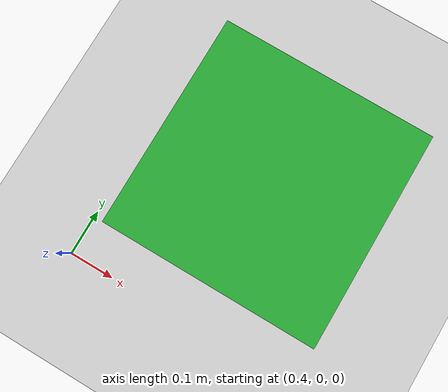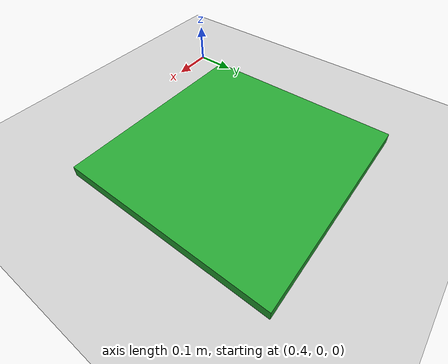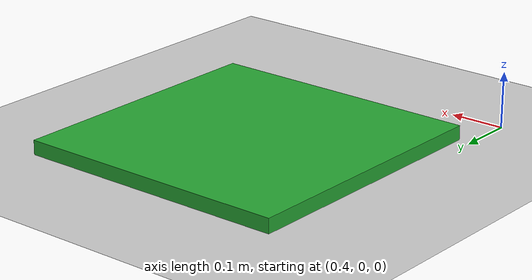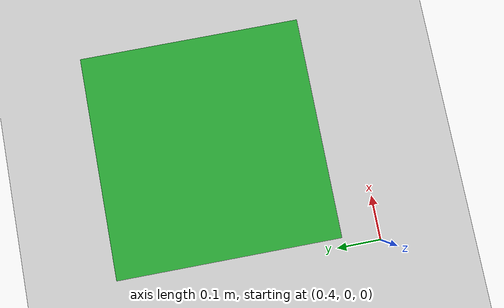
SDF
<?xml version="1.0" ?>
<sdf version="1.4">
  <!-- We use a custom world for the robot so that the camera angle is launched correctly -->

  <world name="default">

  <plugin name="xbot2_clock" filename="libxbot2_gz_clock.so"/>

  <gravity>0 0 -9.81</gravity>

  <model name="ground_plane">
    <static>true</static>
    <link name="link">
      <collision name="collision">
        <geometry>
          <plane>
	    <normal>0 0 1</normal>
            <size>100 100</size>
          </plane>
        </geometry>
        <surface>
          <friction>
            <ode>
              <mu>1</mu>
              <mu2>1</mu2>
            </ode>
          </friction>
        </surface>
      </collision>
      <visual name="visual">
        <cast_shadows>false</cast_shadows>
        <geometry>
          <plane>
            <normal>0 0 1</normal>
            <size>100 100</size>
          </plane>
        </geometry>
        <material>
          <script>
            <uri>file://media/materials/scripts/gazebo.material</uri>
            <name>Gazebo/Grey</name>
          </script>
        </material>
      </visual>
    </link>
  </model>

  <!-- Brick-->
  <model name="brick">
    <static>true</static>
    <pose>0.675 0.34 0 0 0 0</pose>
    <link name="link1">
      <collision name="collision1">
        <geometry>
          <box>
            <size>0.5 0.5 0.05</size>
          </box>
        </geometry>

      </collision>

      <visual name="visual1">
	<cast_shadows>false</cast_shadows>
        <geometry>
          <box>
            <size>0.5 0.5 0.05</size>
          </box>
        </geometry>
	<material>
          <script>
            <uri>file://media/materials/scripts/gazebo.material</uri>
            <name>Gazebo/Green</name>
          </script>
        </material>
      </visual>
    </link>
  </model>

    <!-- Global light source -->
    <include>
      <uri>model://sun</uri>
    </include>

    <!-- Focus camera on tall pendulum -->
    <gui fullscreen='0'>
      <camera name='user_camera'>
        <pose>4.927360 -4.376610 3.740080 0.000000 0.275643 2.356190</pose>
        <view_controller>orbit</view_controller>
      </camera>
    </gui>

    <physics name="update_rate" type="ode">
      <real_time_update_rate>4000</real_time_update_rate>
      <max_step_size>0.00025</max_step_size>
      <max_contacts>5</max_contacts>
      <bullet>
	<solver>
          <iters>100</iters>
          <sor>1.55</sor>
        </solver>
        <constraints>
          <contact_surface_layer>0.2</contact_surface_layer>
          <cfm>0.005</cfm>
          <erp>0.2</erp>
        </constraints>
      </bullet>
      <ode>
	<solver>
          <iters>50</iters>
          <sor>1.20</sor>
        </solver>
        <constraints>
          <contact_surface_layer>0.0002</contact_surface_layer>
          <contact_max_correcting_vel>500</contact_max_correcting_vel>
          <cfm>0.000001</cfm>
          <erp>0.3</erp>
        </constraints>
      </ode>
    </physics>

  </world>
</sdf>
